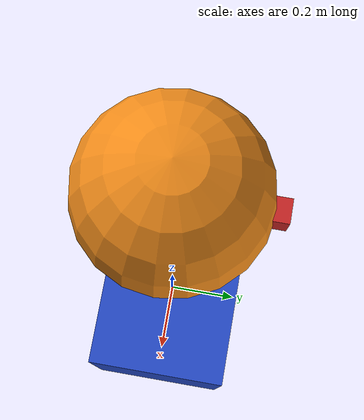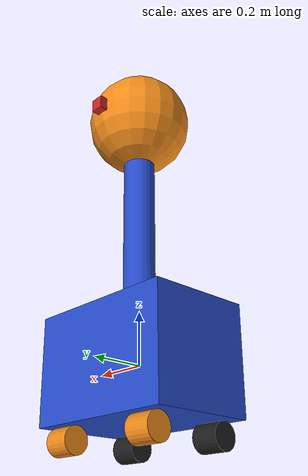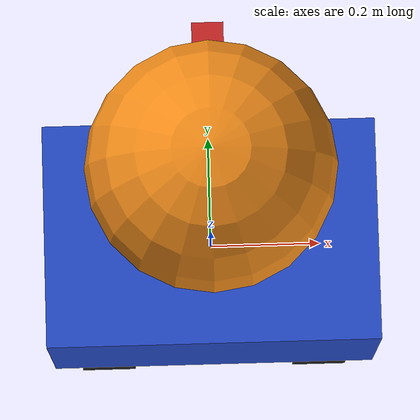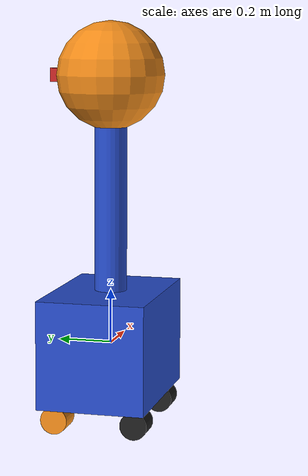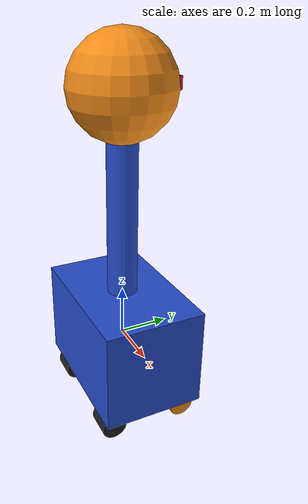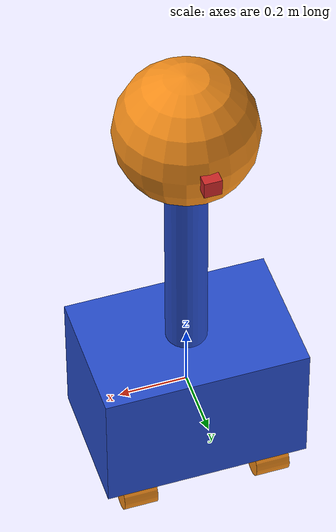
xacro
<?xml version="1.0"?>

<robot name="robot_body"  xmlns:xacro="http://www.ros.org/wiki/xacro">

  <!-- Import all Gazebo-customization elements, including Gazebo colors -->
  <xacro:include filename="$(find body_description)/urdf/body.gazebo" />
  <!-- Import Rviz colors -->
  <xacro:include filename="$(find body_description)/urdf/materials.xacro" />

  <xacro:property name="wheelradius" value="0.05" />
  <xacro:property name="damping" value="0.7" />
  <xacro:property name="wheelmass" value="5" />
  <xacro:property name="wheelmoment" value="1" />

  <link name="base_link">
    <visual>
      <geometry>
        <box size="0.6 0.4 0.4"/>
      </geometry>
      <material name="blue"/>
    </visual>
    <collision>
      <geometry>
        <box size="0.6 0.4 0.4"/>
      </geometry>
    </collision>
    <inertial>
      <mass value="5"/>
      <inertia ixx="0.2" ixy="0.0" ixz="0.0" iyy="0.2" iyz="0.0" izz="0.2"/>
    </inertial>
  </link>

  <link name="right_front_wheel">
    <visual>
      <geometry>
        <cylinder length=".1" radius="${wheelradius}"/>
      </geometry>
      <material name="orange"/>
    </visual>
    <collision>
      <geometry>
        <cylinder length=".1" radius="${wheelradius}"/>
      </geometry>
    </collision>
    <inertial>
      <mass value="${wheelmass}"/>
      <inertia ixx="${wheelmoment}" ixy="0.0" ixz="0.0" iyy="${wheelmoment}" iyz="0.0" izz="${wheelmoment}"/>
    </inertial>
  </link>

  <joint name="right_front_wheel_joint" type="continuous">
    <axis xyz="0 0 -1"/>
    <parent link="base_link"/>
    <child link="right_front_wheel"/>
    <origin rpy="0 1.57075 0" xyz="0.2 0.15 -0.25"/>
    <limit effort="100" velocity="100"/>
    <joint_properties damping="10.0" friction="0.0"/>
    <dynamics damping="${damping}"/>
  </joint>

  <link name="right_back_wheel">
    <visual>
      <geometry>
        <cylinder length=".1" radius="${wheelradius}"/>
      </geometry>
      <material name="black"/>
    </visual>
    <collision>
      <geometry>
        <cylinder length=".1" radius="${wheelradius}"/>
      </geometry>
    </collision>
    <inertial>
      <mass value="${wheelmass}"/>
      <inertia ixx="${wheelmoment}" ixy="0.0" ixz="0.0" iyy="${wheelmoment}" iyz="0.0" izz="${wheelmoment}"/>
    </inertial>
  </link>

  <joint name="right_back_wheel_joint" type="continuous">
    <axis xyz="0 0 1"/>
    <parent link="base_link"/>
    <child link="right_back_wheel"/>
    <origin rpy="0 1.57075 0" xyz="0.2 -0.15 -0.25"/>
    <limit effort="100" velocity="100"/>
    <joint_properties damping="10" friction="0.0"/>
    <dynamics damping="10"/>
  </joint>

  <link name="left_front_wheel">
    <visual>
      <geometry>
        <cylinder length=".1" radius="${wheelradius}"/>
      </geometry>
      <material name="orange"/>
    </visual>
    <collision>
      <geometry>
        <cylinder length=".1" radius="${wheelradius}"/>
      </geometry>
    </collision>
    <inertial>
      <mass value="${wheelmass}"/>
      <inertia ixx="${wheelmoment}" ixy="0.0" ixz="0.0" iyy="${wheelmoment}" iyz="0.0" izz="${wheelmoment}"/>
    </inertial>
  </link>

  <joint name="left_front_wheel_joint" type="continuous">
    <axis xyz="0 0 -1"/>
    <parent link="base_link"/>
    <child link="left_front_wheel"/>
    <origin rpy="0 1.57075 0" xyz="-0.2 0.15 -0.25"/>
    <limit effort="100" velocity="100"/>
    <joint_properties damping="10.0" friction="0.0"/>
    <dynamics damping="${damping}"/>
  </joint>

  <link name="left_back_wheel">
    <visual>
      <geometry>
        <cylinder length=".1" radius="${wheelradius}"/>
      </geometry>
      <material name="black"/>
    </visual>
    <collision>
      <geometry>
        <cylinder length=".1" radius="${wheelradius}"/>
      </geometry>
    </collision>
    <inertial>
      <mass value="${wheelmass}"/>
      <inertia ixx="${wheelmoment}" ixy="0.0" ixz="0.0" iyy="${wheelmoment}" iyz="0.0" izz="${wheelmoment}"/>
    </inertial>
  </link>

  <joint name="left_back_wheel_joint" type="continuous">
    <axis xyz="0 0 1"/>
    <parent link="base_link"/>
    <child link="left_back_wheel"/>
    <origin rpy="0 1.57075 0" xyz="-0.2 -0.15 -0.25"/>
    <limit effort="100" velocity="100"/>
    <joint_properties damping="10" friction="0.0"/>
    <dynamics damping="10"/>
  </joint>

  <link name="neck">
    <visual>
      <geometry>
        <cylinder length="0.8" radius="0.06"/>
      </geometry>
      <material name="blue"/>
    </visual>
    <collision>
      <geometry>
        <box size="0.06 0.06 0.8"/>
      </geometry>
    </collision>
    <inertial>
      <mass value="0.1"/>
      <inertia ixx="0.1" ixy="0.0" ixz="0.0" iyy="0.1" iyz="0.0" izz="0.1"/>
    </inertial>
  </link>

  <joint name="baselink_neck" type="continuous">
    <parent link="base_link"/>
    <child link="neck"/>
    <axis xyz="0 0 1"/>
    <origin xyz="0 0 0.6"/>
    <dynamics damping="${damping}"/>
  </joint>

  <link name="head">
    <visual>
      <geometry>
        <sphere radius="0.2"/>
      </geometry>
      <material name="orange"/>
    </visual>
    <collision>
      <geometry>
        <box size="0.1 0.1 0.1"/>
      </geometry>
    </collision>
    <inertial>
      <mass value="1e-5"/>
      <inertia ixx="0.1" ixy="0.0" ixz="0.0" iyy="0" iyz="0.0" izz="0"/>
    </inertial>
  </link>

  <joint name="neck_head" type="continuous">
    <parent link="neck"/>
    <child link="head"/>
    <axis xyz="1 0 0"/>
    <origin xyz="0 0 0.4"/>
    <dynamics damping="${damping}"/>
  </joint>

  <!-- Camera -->
  <link name="camera_link">
    <collision>
      <origin xyz="0 0 0" rpy="0 0 0"/>
      <geometry>
	       <box size="0.05 0.05 0.05"/>
      </geometry>
    </collision>

    <visual>
      <origin xyz="0 0 0" rpy="0 0 0"/>
      <geometry>
	       <box size="0.05 0.05 0.05"/>
      </geometry>
      <material name="red"/>
    </visual>

    <inertial>
      <mass value="1e-5" />
      <origin xyz="0 0 0" rpy="0 0 0"/>
      <inertia ixx="1e-6" ixy="0" ixz="0" iyy="1e-6" iyz="0" izz="1e-6" />
    </inertial>
  </link>

  <joint name="camera_joint" type="fixed">
    <axis xyz="0 1 0" />
    <origin xyz="0 0.2 0" rpy="0 0 0"/>
    <parent link="head"/>
    <child link="camera_link"/>
  </joint>

  <transmission name="tran3">
    <type>transmission_interface/SimpleTransmission</type>
    <joint name="neck_head"/>
    <actuator name="motor3">
      <hardwareInterface>EffortJointInterface</hardwareInterface>
      <mechanicalReduction>1</mechanicalReduction>
    </actuator>
  </transmission>

  <transmission name="tran4">
    <type>transmission_interface/SimpleTransmission</type>
    <joint name="baselink_neck"/>
    <actuator name="motor4">
      <hardwareInterface>EffortJointInterface</hardwareInterface>
      <mechanicalReduction>1</mechanicalReduction>
    </actuator>
  </transmission>

  <transmission name="tran2">
    <type>transmission_interface/SimpleTransmission</type>
    <joint name="left_front_wheel_joint"/>
    <actuator name="motor2">
      <hardwareInterface>EffortJointInterface</hardwareInterface>
      <mechanicalReduction>1</mechanicalReduction>
    </actuator>
  </transmission>

  <transmission name="tran1">
    <type>transmission_interface/SimpleTransmission</type>
    <joint name="right_front_wheel_joint"/>
    <actuator name="motor1">
      <hardwareInterface>EffortJointInterface</hardwareInterface>
      <mechanicalReduction>1</mechanicalReduction>
    </actuator>
  </transmission>

</robot>
